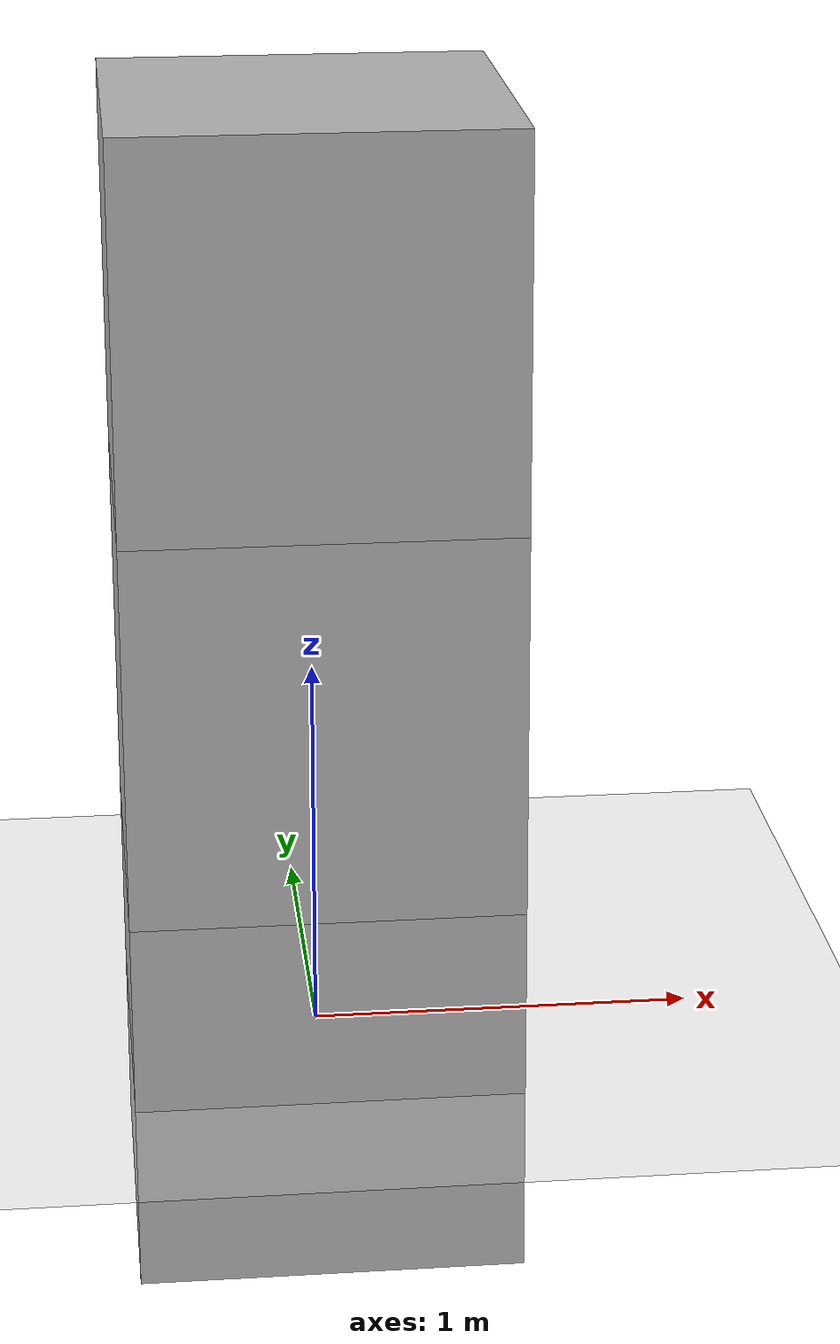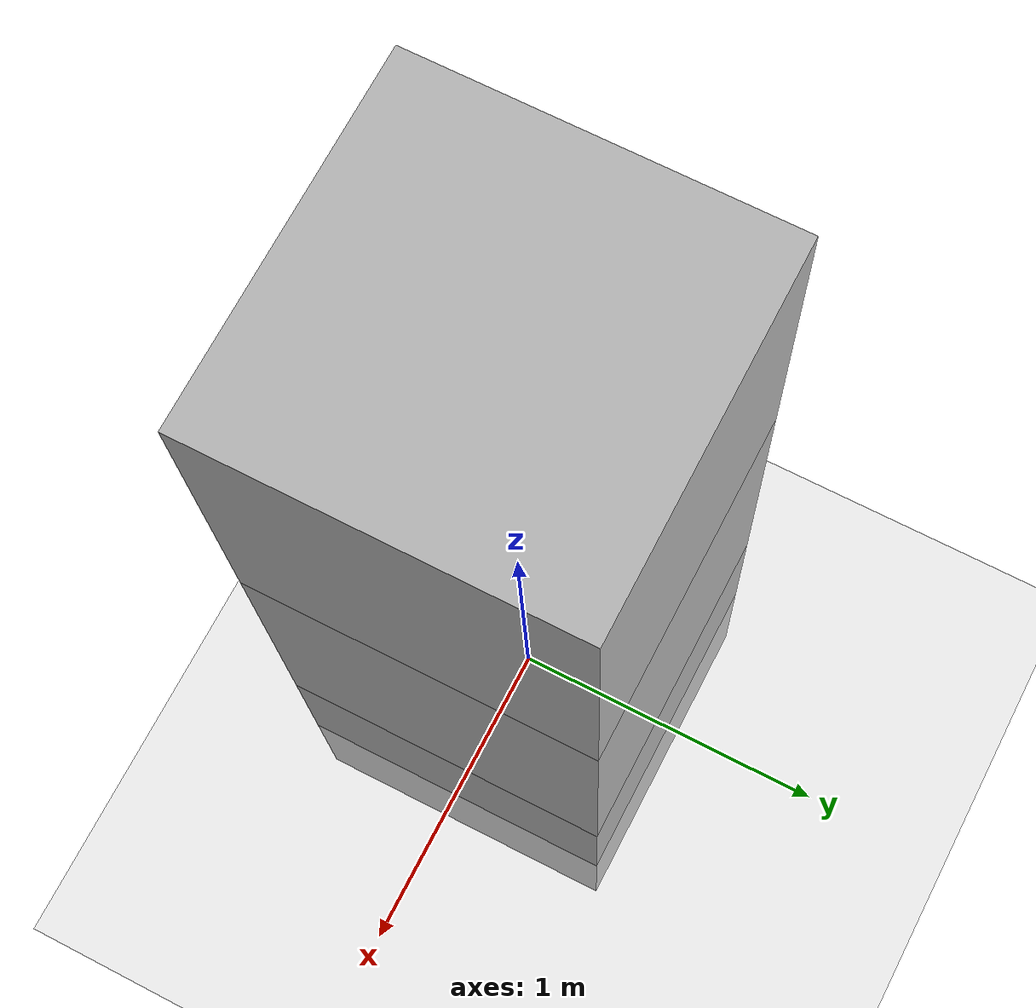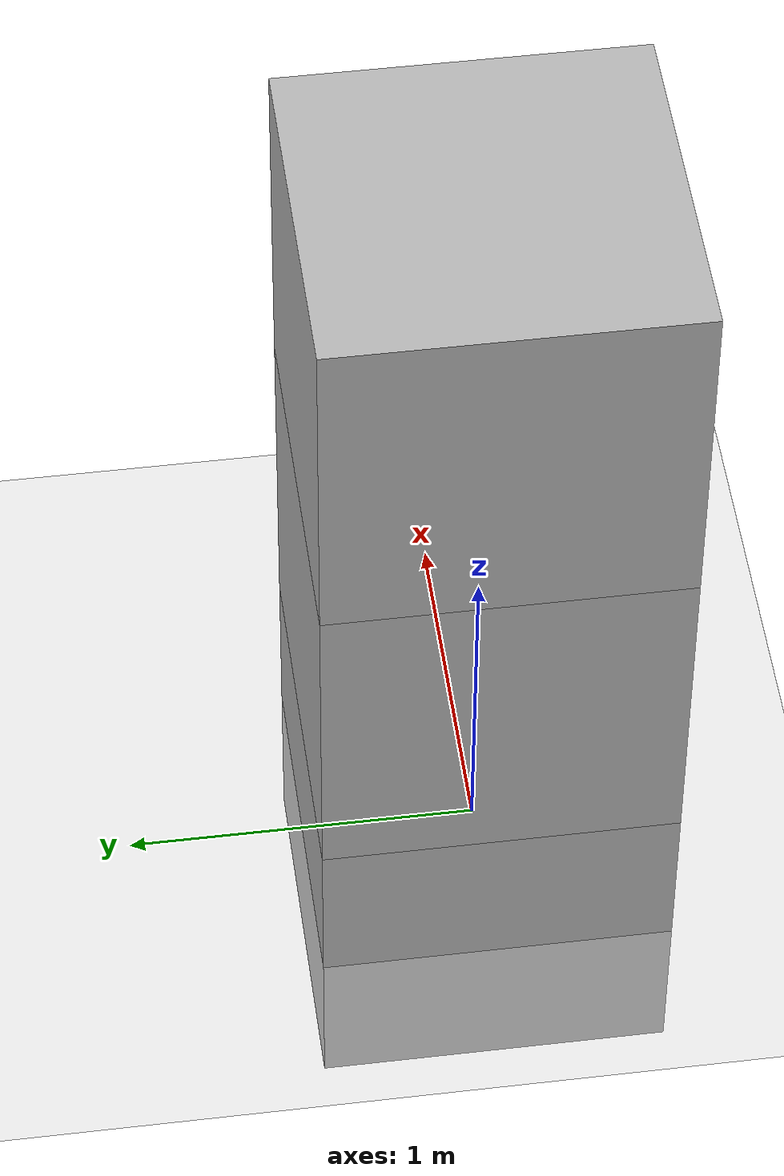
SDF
<?xml version="1.0" ?>
<sdf version="1.5">
  <world name="default">
    <include>
      <uri>model://sun</uri>
    </include>

    <include>
      <uri>model://ground_plane</uri>
    </include>

    <model name="model_1">
      <pose>0 0 0 0 0 0</pose>

      <link name="link_1">
        <pose>0 0 0 0 0 0</pose>
        <collision name="collision_1">
          <geometry>
            <box>
              <size>1 1 1</size>
            </box>
          </geometry>
        </collision>
        <visual name="visual_1">
          <geometry>
            <box>
              <size>1 1 1</size>
            </box>
          </geometry>
        </visual>
      </link>

      <model name="model_2">
        <pose>0 0 1 0 0 0</pose>

        <link name="link_1">
          <pose>0 0 0 0 0 0</pose>
          <collision name="collision_1">
            <geometry>
              <box>
                <size>1 1 1</size>
              </box>
            </geometry>
          </collision>
          <visual name="visual_1">
            <geometry>
              <box>
                <size>1 1 1</size>
              </box>
            </geometry>
          </visual>
        </link>

        <link name="link_2">
          <pose>0 0 1 0 0 0</pose>
          <collision name="collision_2">
            <geometry>
              <box>
                <size>1 1 1</size>
              </box>
            </geometry>
          </collision>
          <visual name="visual_2">
            <geometry>
              <box>
                <size>1 1 1</size>
              </box>
            </geometry>
          </visual>
        </link>

        <joint name="joint_1" type="revolute">
          <parent>link_1</parent>
          <child>link_2</child>
          <pose>0 0 0 0 0 0</pose>
          <axis>
            <xyz>0 0 1</xyz>
          </axis>
        </joint>

      </model>

      <joint name="joint_1" type="revolute">
        <parent>link_1</parent>
        <child>model_2::link_1</child>
        <pose>0 0 0 0 0 0</pose>
        <axis>
          <xyz>0 0 1</xyz>
        </axis>
      </joint>
    </model>

  </world>
</sdf>
